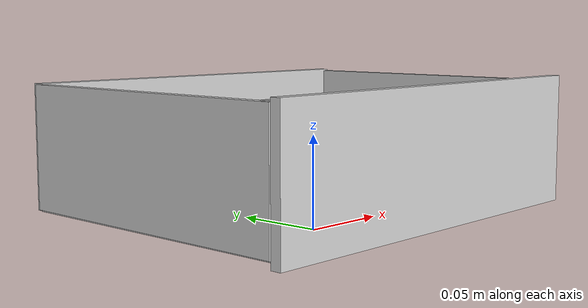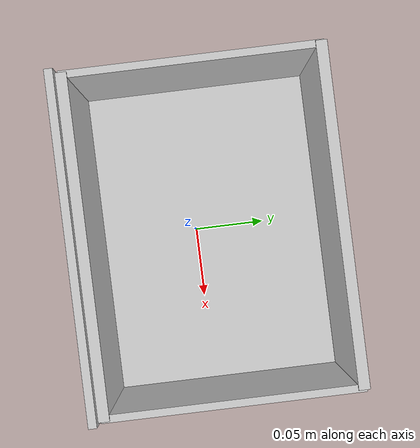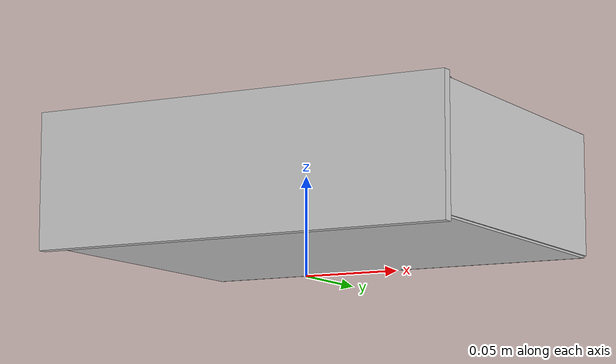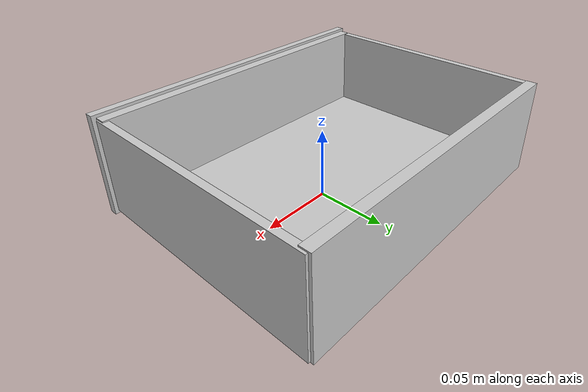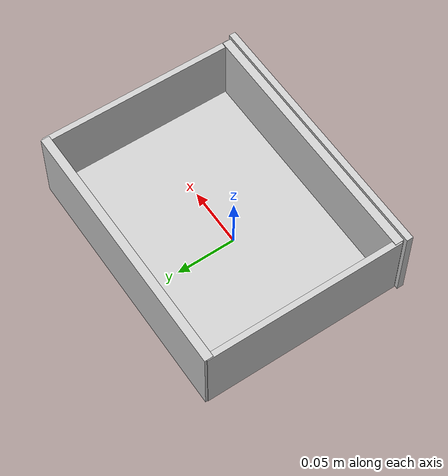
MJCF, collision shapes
<mujoco model="wooden_cabinet_bottom">
  <asset>
  <texture file="dark_fine_wood.png" name="tex-wooden_cabinet_bottom" type="2d" />
  <material name="wooden_cabinet_bottom" reflectance="0.5" texrepeat="1 1" texture="tex-wooden_cabinet_bottom" texuniform="false" />
  <mesh file="visual/wooden_cabinet_bottom_vis.msh" name="wooden_cabinet_bottom_vis" scale="0.05 0.05 0.05" /></asset>
  <worldbody>
    <body>
      <body name="object">
      <geom solimp="0.998 0.998 0.001" solref="0.001 1" density="100" friction="0.95 0.3 0.1" type="mesh" mesh="wooden_cabinet_bottom_vis" conaffinity="0" contype="0" group="1" material="wooden_cabinet_bottom" /><geom solimp="0.998 0.998 0.001" solref="0.001 1" density="100" friction="0.95 0.3 0.1" type="box" pos="0.00334 -0.07524 0.04476" quat="0.50000 0.50000 -0.50000 -0.50000" size="0.00271 0.03427 0.10934" group="0" rgba="0.8 0.8 0.8 0.3" /><geom solimp="0.998 0.998 0.001" solref="0.001 1" density="100" friction="0.95 0.3 0.1" type="box" pos="0.00334 0.09077 0.04525" quat="0.50000 0.50000 0.50000 0.50000" size="0.00356 0.03214 0.10679" group="0" rgba="0.8 0.8 0.8 0.3" /><geom solimp="0.998 0.998 0.001" solref="0.001 1" density="100" friction="0.95 0.3 0.1" type="box" pos="0.00334 -0.06839 0.04525" quat="0.50000 0.50000 0.50000 0.50000" size="0.00356 0.03214 0.10679" group="0" rgba="0.8 0.8 0.8 0.3" /><geom solimp="0.998 0.998 0.001" solref="0.001 1" density="100" friction="0.95 0.3 0.1" type="box" pos="0.10894 0.01105 0.04525" quat="0.70711 0.70711 -0.00115 -0.00115" size="0.00241 0.03133 0.08148" group="0" rgba="0.8 0.8 0.8 0.3" /><geom solimp="0.998 0.998 0.001" solref="0.001 1" density="100" friction="0.95 0.3 0.1" type="box" pos="-0.10191 0.01105 0.04525" quat="0.70711 0.70711 -0.00115 -0.00115" size="0.00241 0.03165 0.08148" group="0" rgba="0.8 0.8 0.8 0.3" /><geom solimp="0.998 0.998 0.001" solref="0.001 1" density="100" friction="0.95 0.3 0.1" type="box" pos="0.00348 0.01048 0.01682" quat="0.70711 0.00000 0.70711 0.00000" size="0.00401 0.08095 0.10696" group="0" rgba="0.8 0.8 0.8 0.3" /></body>
      <site rgba="0 0 0 0" size="0.005" pos="0 0 -0.0240" name="bottom_site" />
      <site rgba="0 0 0 0" size="0.005" pos="0 0 0.04" name="top_site" />
      <site rgba="0 0 0 0" size="0.005" pos="0.025 0.025 0" name="horizontal_radius_site" />
    </body>
  </worldbody>
</mujoco>
